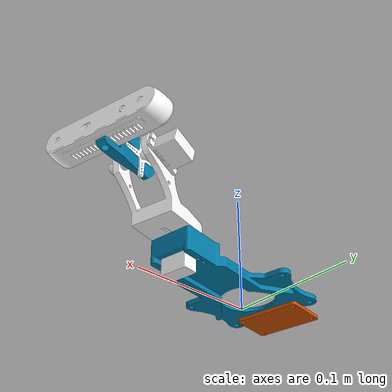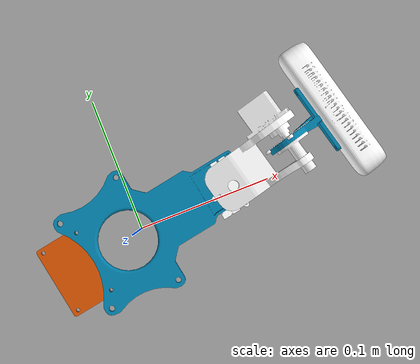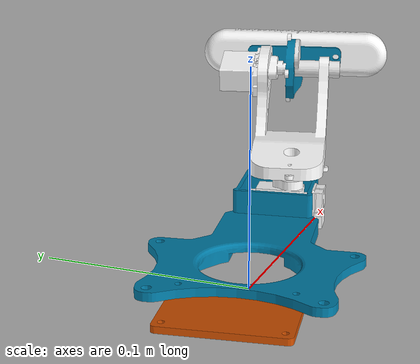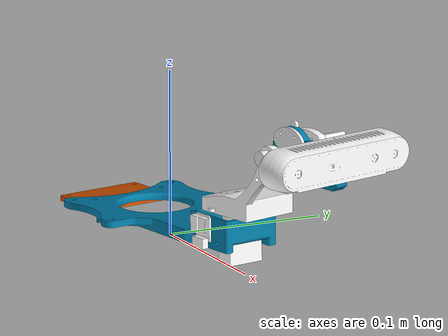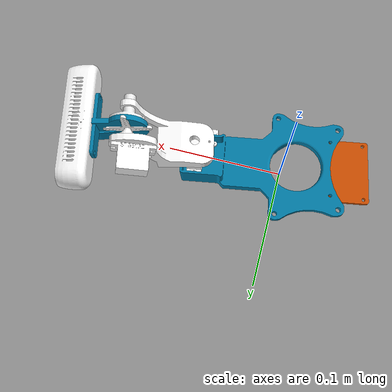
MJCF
<mujoco model="avp_model.SLDASM">
  <compiler angle="radian"/>

  <asset>
    <mesh name="base_link" content_type="model/stl" file="meshes/base_link.STL"/>
    <mesh name="URT-2_Link" content_type="model/stl" file="meshes/URT-2_Link.STL"/>
    <mesh name="Adapter_Link" content_type="model/stl" file="meshes/Adapter_Link.STL"/>
    <mesh name="servo_STS3032_1_Link" content_type="model/stl" file="meshes/servo_STS3032_1_Link.STL"/>
    <mesh name="servo_horn_1_Link" content_type="model/stl" file="meshes/servo_horn_1_Link.STL"/>
    <mesh name="002_2dof_head_Link" content_type="model/stl" file="meshes/002_2dof_head_Link.STL"/>
    <mesh name="servo_STS3032_2_Link" content_type="model/stl" file="meshes/servo_STS3032_2_Link.STL"/>
    <mesh name="servo_horn_2_Link" content_type="model/stl" file="meshes/servo_horn_2_Link.STL"/>
    <mesh name="003_2dof_head_Link" content_type="model/stl" file="meshes/003_2dof_head_Link.STL"/>
    <mesh name="Part_1_Link" content_type="model/stl" file="meshes/Part_1_Link.STL"/>
    <mesh name="Camera_D415_Link" content_type="model/stl" file="meshes/Camera_D415_Link.STL"/>
  </asset>

  <worldbody>
    <geom pos="0 0 0.0164853" quat="0.707107 -0.707107 0 0" type="mesh" rgba="0 0.490196 0.658824 1" mesh="base_link"/>
    <geom pos="-0.054201 -0.0116368 0.0105803" quat="0.765335 0.00103419 0.00198132 -0.643628" type="mesh" rgba="0.811765 0.309804 0 1" mesh="URT-2_Link"/>
    <geom pos="-0.0279377 -0.0261587 0.196472" quat="0.539773 0.455845 0.542575 -0.454382" type="mesh" rgba="1 1 1 1" mesh="Adapter_Link"/>
    <geom pos="0.0726941 0.0102431 5.47282e-05" quat="-0.453713 -0.456515 -0.540443 -0.541905" type="mesh" rgba="1 1 1 1" mesh="servo_STS3032_1_Link"/>
    <body name="servo_horn_1_Link" pos="0.0736424 0.00498256 0.0333287" quat="0.0711261 0.0702213 -0.70205 -0.705079">
      <inertial pos="-0.0235158 0.0185843 0.0106841" quat="0.516507 0.713984 0.453822 0.132263" mass="0.0275545" diaginertia="2.22735e-05 1.97365e-05 4.981e-06"/>
      <joint name="servo_horn_1" pos="0 0 0" axis="0 1 0"/>
      <geom type="mesh" rgba="1 1 1 1" mesh="servo_horn_1_Link"/>
      <geom type="mesh" rgba="1 1 1 1" mesh="002_2dof_head_Link"/>
      <geom pos="0 0.0289105 0" quat="0.701057 -0.701057 0.092296 -0.092296" type="mesh" rgba="1 1 1 1" mesh="servo_STS3032_2_Link"/>
      <body name="servo_horn_2_Link" pos="-0.0471893 0.0403398 0.00756093" quat="0.658832 -0.658832 -0.256788 0.256788">
        <inertial pos="-0.0215623 0.000333942 0.0211653" quat="0.646569 0.66071 -0.266118 0.273115" mass="0.0462624" diaginertia="3.71796e-05 3.19313e-05 9.02383e-06"/>
        <joint name="servo_horn_2" pos="0 0 0" axis="-0.0360199767720671 0.998802471712146 0.033108666162308" range="-1.5708 1.5708" actuatorfrcrange="-1 1"/>
        <geom pos="0.0175158 0.00756093 -0.0506759" quat="1 0 0 0" type="mesh" rgba="1 1 1 1" mesh="servo_horn_2_Link"/>
        <geom pos="0.00868161 0.00756093 -0.0602869" quat="1 0 0 0" type="mesh" rgba="0 0.490196 0.658824 1" mesh="003_2dof_head_Link"/>
        <geom pos="0.0270086 0.00756093 -0.0403489" quat="0.499998 0.5 -0.5 0.500002" type="mesh" rgba="0.921569 0.921569 0.921569 1" mesh="Part_1_Link"/>
        <geom pos="0.00933817 0.00756093 -0.0595726" quat="-2.59734e-06 0.707105 -0.707108 2.59735e-06" type="mesh" rgba="1 1 1 1" mesh="Camera_D415_Link"/>
      </body>
    </body>
  </worldbody>
</mujoco>
